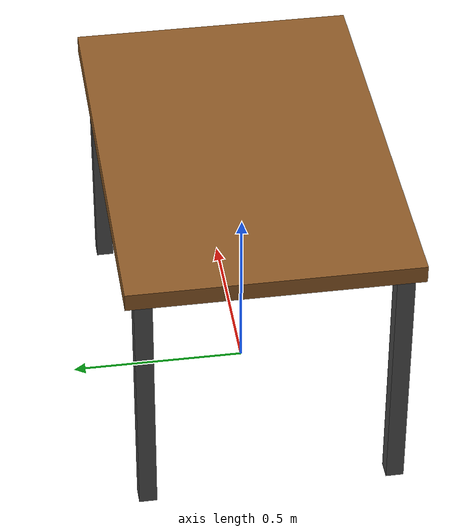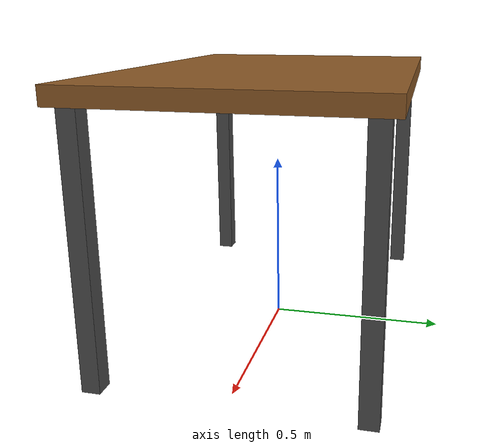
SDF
<?xml version="1.0"?>

<sdf version="1.7">

<model name="restaurant_table">

<static>true</static>

<link name="table">

<!-- ================= TABLE TOP ================= -->

<collision name="top_collision">

<pose>0 0 0.75 0 0 0</pose>

<geometry>

<box>

<size>1.2 0.8 0.05</size>

</box>

</geometry>

</collision>

<visual name="top_visual">

<pose>0 0 0.75 0 0 0</pose>

<geometry>

<box>

<size>1.2 0.8 0.05</size>

</box>

</geometry>

<material>

<ambient>0.55 0.35 0.15 1</ambient>

<diffuse>0.55 0.35 0.15 1</diffuse>

</material>

</visual>

<!-- ================= LEG 1 ================= -->

<collision name="leg1_collision">

<pose>0.55 0.35 0.375 0 0 0</pose>

<geometry>

<box>

<size>0.05 0.05 0.75</size>

</box>

</geometry>

</collision>

<visual name="leg1_visual">

<pose>0.55 0.35 0.375 0 0 0</pose>

<geometry>

<box>

<size>0.05 0.05 0.75</size>

</box>

</geometry>

<material>

<ambient>0.3 0.3 0.3 1</ambient>

<diffuse>0.3 0.3 0.3 1</diffuse>

</material>

</visual>

<!-- ================= LEG 2 ================= -->

<collision name="leg2_collision">

<pose>0.55 -0.35 0.375 0 0 0</pose>

<geometry>

<box>

<size>0.05 0.05 0.75</size>

</box>

</geometry>

</collision>

<visual name="leg2_visual">

<pose>0.55 -0.35 0.375 0 0 0</pose>

<geometry>

<box>

<size>0.05 0.05 0.75</size>

</box>

</geometry>

<material>

<ambient>0.3 0.3 0.3 1</ambient>

<diffuse>0.3 0.3 0.3 1</diffuse>

</material>

</visual>

<!-- ================= LEG 3 ================= -->

<collision name="leg3_collision">

<pose>-0.55 0.35 0.375 0 0 0</pose>

<geometry>

<box>

<size>0.05 0.05 0.75</size>

</box>

</geometry>

</collision>

<visual name="leg3_visual">

<pose>-0.55 0.35 0.375 0 0 0</pose>

<geometry>

<box>

<size>0.05 0.05 0.75</size>

</box>

</geometry>

<material>

<ambient>0.3 0.3 0.3 1</ambient>

<diffuse>0.3 0.3 0.3 1</diffuse>

</material>

</visual>

<!-- ================= LEG 4 ================= -->

<collision name="leg4_collision">

<pose>-0.55 -0.35 0.375 0 0 0</pose>

<geometry>

<box>

<size>0.05 0.05 0.75</size>

</box>

</geometry>

</collision>

<visual name="leg4_visual">

<pose>-0.55 -0.35 0.375 0 0 0</pose>

<geometry>

<box>

<size>0.05 0.05 0.75</size>

</box>

</geometry>

<material>

<ambient>0.3 0.3 0.3 1</ambient>

<diffuse>0.3 0.3 0.3 1</diffuse>

</material>

</visual>

</link>

</model>

</sdf>
